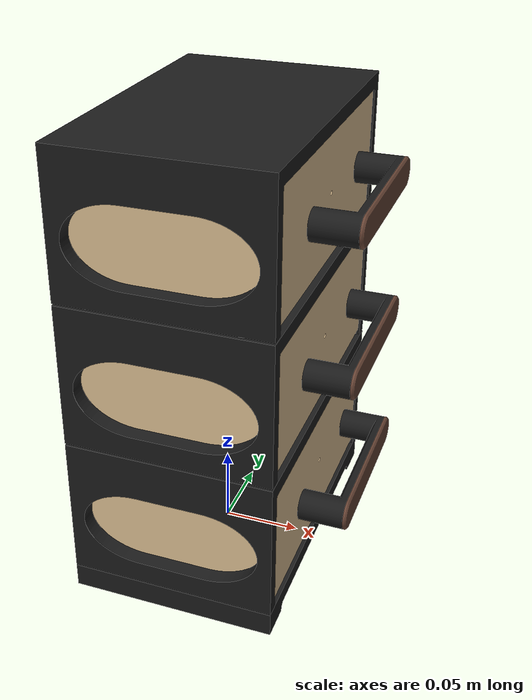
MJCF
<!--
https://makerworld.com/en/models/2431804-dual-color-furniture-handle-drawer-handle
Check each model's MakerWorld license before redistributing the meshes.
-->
<mujoco model="cabinet">
  <compiler meshdir="." angle="radian" autolimits="true"/>
  <default>
    <!-- Mesh visuals are non-colliding: MuJoCo treats mesh collisions as convex
         hulls, so explicit box geoms below provide the drawer support/contact. -->
    <geom density="600" friction="0.5 0.02 0.001" solref="0.005 1" contype="0" conaffinity="0"/>
  </default>

  <asset>
    <mesh name="frame_top"    file="cabinet_frame_top.stl"    scale="0.001 0.001 0.001"/>
    <mesh name="frame_mid"    file="cabinet_frame_mid.stl"    scale="0.001 0.001 0.001"/>
    <mesh name="frame_bottom" file="cabinet_frame_bottom.stl" scale="0.001 0.001 0.001"/>
    <mesh name="drawer_mesh"  file="cabinet_drawer.stl"       scale="0.001 0.001 0.001"/>
    <mesh name="handle_body"  file="handle_body_96mm.stl"     scale="0.001 0.001 0.001"/>
    <mesh name="handle_cover" file="handle_cover_96mm.stl"    scale="0.001 0.001 0.001"/>
    <material name="frame" rgba="0.11 0.11 0.11 1"/>
    <material name="drawer" rgba="0.90 0.78 0.60 1"/>
    <material name="handle_body" rgba="0.10 0.10 0.10 1"/>
    <material name="handle_cover" rgba="0.40 0.26 0.20 1"/>
  </asset>

  <worldbody>
    <!-- Root origin = cabinet base center on the floor. Place this asset at z=0. -->
    <body name="root">
      <!-- static frame: base + 3 stacked modules -->
      <body name="base" pos="-0.065 -0.1792 -0.1205" quat="0 0.707107 0 0.707107"><geom type="mesh" mesh="frame_bottom" material="frame"/></body>
      <body name="mod_bottom" pos="-0.065 0.128 -0.6809" quat="0 0.707107 0 0.707107"><geom type="mesh" mesh="frame_mid" material="frame"/></body>
      <body name="mod_middle" pos="-0.065 0.128 -0.5879" quat="0 0.707107 0 0.707107"><geom type="mesh" mesh="frame_mid" material="frame"/></body>
      <body name="mod_top" pos="-0.065 0.128 0.1195" quat="0 0.707107 0 0.707107"><geom type="mesh" mesh="frame_top" material="frame"/></body>
      <!-- Wide enough that a free-standing cabinet slides rather than tips. -->
      <geom name="base_pad" type="box" pos="0 0 0.004" size="0.120 0.115 0.004" rgba="0.12 0.12 0.12 1" group="3" contype="1" conaffinity="1" friction="0.23 0.02 0.001"/>
      <geom name="bay1_shelf" type="box" pos="0 0 0.012" size="0.065 0.090 0.006" rgba="0 1 0.25 0.55" group="3" contype="1" conaffinity="1" friction="0.23 0.02 0.001"/>
      <geom name="bay1_wall_l" type="box" pos="0 0.096 0.062" size="0.065 0.006 0.046" rgba="0 1 0.25 0.55" group="3" contype="1" conaffinity="1"/>
      <geom name="bay1_wall_r" type="box" pos="0 -0.096 0.062" size="0.065 0.006 0.046" rgba="0 1 0.25 0.55" group="3" contype="1" conaffinity="1"/>
      <geom name="bay1_back" type="box" pos="-0.071 0 0.062" size="0.006 0.090 0.046" rgba="0 1 0.25 0.55" group="3" contype="1" conaffinity="1"/>
      <geom name="bay2_shelf" type="box" pos="0 0 0.105" size="0.065 0.090 0.006" rgba="0 1 0.25 0.55" group="3" contype="1" conaffinity="1"/>
      <geom name="bay2_wall_l" type="box" pos="0 0.096 0.155" size="0.065 0.006 0.046" rgba="0 1 0.25 0.55" group="3" contype="1" conaffinity="1"/>
      <geom name="bay2_wall_r" type="box" pos="0 -0.096 0.155" size="0.065 0.006 0.046" rgba="0 1 0.25 0.55" group="3" contype="1" conaffinity="1"/>
      <geom name="bay2_back" type="box" pos="-0.071 0 0.155" size="0.006 0.090 0.046" rgba="0 1 0.25 0.55" group="3" contype="1" conaffinity="1"/>
      <geom name="bay3_shelf" type="box" pos="0 0 0.198" size="0.065 0.090 0.006" rgba="0 1 0.25 0.55" group="3" contype="1" conaffinity="1"/>
      <geom name="bay3_wall_l" type="box" pos="0 0.096 0.248" size="0.065 0.006 0.046" rgba="0 1 0.25 0.55" group="3" contype="1" conaffinity="1"/>
      <geom name="bay3_wall_r" type="box" pos="0 -0.096 0.248" size="0.065 0.006 0.046" rgba="0 1 0.25 0.55" group="3" contype="1" conaffinity="1"/>
      <geom name="bay3_back" type="box" pos="-0.071 0 0.248" size="0.006 0.090 0.046" rgba="0 1 0.25 0.55" group="3" contype="1" conaffinity="1"/>
      <geom name="top_shelf" type="box" pos="0 0 0.291" size="0.065 0.090 0.006" rgba="0 1 0.25 0.55" group="3" contype="1" conaffinity="1"/>

      <!-- Drawers are free bodies on simple support shelves: pull out +X and they can fall. -->
      <body name="drawer1" pos="-0.4352 0.1792 0.020663">
        <joint name="drawer1_x" type="slide" axis="1 0 0" damping="1"/>
        <joint name="drawer1_y" type="slide" axis="0 1 0" damping="1"/>
        <joint name="drawer1_z" type="slide" axis="0 0 1" damping="1"/>
        <joint name="drawer1_ball" type="ball" damping="0.05"/>
        <geom name="drawer1_contact" type="box" pos="0.4352 -0.1792 0.04084" size="0.062 0.088 0.038" rgba="0 1 1 0.50" group="3" contype="1" conaffinity="1" friction="0.6 0.02 0.001"/>
        <geom name="drawer1_handle_bar" type="capsule" fromto="0.52449 -0.2272 0.04084 0.52449 -0.1312 0.04084" size="0.009" rgba="1 0.45 0 0.80" group="3" contype="1" conaffinity="1" friction="1.2 0.05 0.005"/>
        <geom name="drawer1_handle_post_l" type="capsule" fromto="0.51049 -0.2192 0.04084 0.52449 -0.2192 0.04084" size="0.006" rgba="1 0.45 0 0.80" group="3" contype="1" conaffinity="1" friction="1.2 0.05 0.005"/>
        <geom name="drawer1_handle_post_r" type="capsule" fromto="0.51049 -0.1392 0.04084 0.52449 -0.1392 0.04084" size="0.006" rgba="1 0.45 0 0.80" group="3" contype="1" conaffinity="1" friction="1.2 0.05 0.005"/>
        <geom type="mesh" mesh="drawer_mesh" material="drawer"/>
        <geom type="mesh" mesh="handle_cover" material="handle_cover" pos="0.52986 -0.1792 0.04084" quat="-0.5 0.5 0.5 -0.5"/>
        <geom type="mesh" mesh="handle_body"  material="handle_body"  pos="0.53049 -0.1792 0.04084" quat="-0.5 0.5 0.5 -0.5"/>
        <site name="grasp1" pos="0.51649 -0.1792 0.04084" size="0.008" rgba="1 0.2 0.2 0" group="3"/>
      </body>
      <body name="drawer2" pos="-0.4352 0.1792 0.113663">
        <!-- A tight drawer: dry friction independent of its weight, above what the cabinet's sole holds. -->
        <joint name="drawer2_x" type="slide" axis="1 0 0" damping="1" frictionloss="20"/>
        <joint name="drawer2_y" type="slide" axis="0 1 0" damping="1"/>
        <joint name="drawer2_z" type="slide" axis="0 0 1" damping="1"/>
        <joint name="drawer2_ball" type="ball" damping="0.05"/>
        <geom name="drawer2_contact" type="box" pos="0.4352 -0.1792 0.04084" size="0.062 0.088 0.038" rgba="0 1 1 0.50" group="3" contype="1" conaffinity="1" friction="0.6 0.02 0.001"/>
        <geom name="drawer2_handle_bar" type="capsule" fromto="0.52449 -0.2272 0.04084 0.52449 -0.1312 0.04084" size="0.009" rgba="1 0.45 0 0.80" group="3" contype="1" conaffinity="1" friction="1.2 0.05 0.005"/>
        <geom name="drawer2_handle_post_l" type="capsule" fromto="0.51049 -0.2192 0.04084 0.52449 -0.2192 0.04084" size="0.006" rgba="1 0.45 0 0.80" group="3" contype="1" conaffinity="1" friction="1.2 0.05 0.005"/>
        <geom name="drawer2_handle_post_r" type="capsule" fromto="0.51049 -0.1392 0.04084 0.52449 -0.1392 0.04084" size="0.006" rgba="1 0.45 0 0.80" group="3" contype="1" conaffinity="1" friction="1.2 0.05 0.005"/>
        <geom type="mesh" mesh="drawer_mesh" material="drawer"/>
        <geom type="mesh" mesh="handle_cover" material="handle_cover" pos="0.52986 -0.1792 0.04084" quat="-0.5 0.5 0.5 -0.5"/>
        <geom type="mesh" mesh="handle_body"  material="handle_body"  pos="0.53049 -0.1792 0.04084" quat="-0.5 0.5 0.5 -0.5"/>
        <site name="grasp2" pos="0.51649 -0.1792 0.04084" size="0.008" rgba="1 0.2 0.2 0" group="3"/>
      </body>
      <body name="drawer3" pos="-0.4352 0.1792 0.206663">
        <joint name="drawer3_x" type="slide" axis="1 0 0" damping="1"/>
        <joint name="drawer3_y" type="slide" axis="0 1 0" damping="1"/>
        <joint name="drawer3_z" type="slide" axis="0 0 1" damping="1"/>
        <joint name="drawer3_ball" type="ball" damping="0.05"/>
        <geom name="drawer3_contact" type="box" pos="0.4352 -0.1792 0.04084" size="0.062 0.088 0.038" rgba="0 1 1 0.50" group="3" contype="1" conaffinity="1" friction="0.6 0.02 0.001"/>
        <geom name="drawer3_handle_bar" type="capsule" fromto="0.52449 -0.2272 0.04084 0.52449 -0.1312 0.04084" size="0.009" rgba="1 0.45 0 0.80" group="3" contype="1" conaffinity="1" friction="1.2 0.05 0.005"/>
        <geom name="drawer3_handle_post_l" type="capsule" fromto="0.51049 -0.2192 0.04084 0.52449 -0.2192 0.04084" size="0.006" rgba="1 0.45 0 0.80" group="3" contype="1" conaffinity="1" friction="1.2 0.05 0.005"/>
        <geom name="drawer3_handle_post_r" type="capsule" fromto="0.51049 -0.1392 0.04084 0.52449 -0.1392 0.04084" size="0.006" rgba="1 0.45 0 0.80" group="3" contype="1" conaffinity="1" friction="1.2 0.05 0.005"/>
        <geom type="mesh" mesh="drawer_mesh" material="drawer"/>
        <geom type="mesh" mesh="handle_cover" material="handle_cover" pos="0.52986 -0.1792 0.04084" quat="-0.5 0.5 0.5 -0.5"/>
        <geom type="mesh" mesh="handle_body"  material="handle_body"  pos="0.53049 -0.1792 0.04084" quat="-0.5 0.5 0.5 -0.5"/>
        <site name="grasp3" pos="0.51649 -0.1792 0.04084" size="0.008" rgba="1 0.2 0.2 0" group="3"/>
      </body>
    </body>
  </worldbody>

  <contact>
    <pair geom1="drawer1_contact" geom2="bay1_shelf" friction="0.6 0.6 0.02 0.001 0.001" solref="0.005 1"/>
    <pair geom1="drawer1_contact" geom2="bay1_wall_l" friction="0.6 0.6 0.02 0.001 0.001" solref="0.005 1"/>
    <pair geom1="drawer1_contact" geom2="bay1_wall_r" friction="0.6 0.6 0.02 0.001 0.001" solref="0.005 1"/>
    <pair geom1="drawer1_contact" geom2="bay1_back" friction="0.6 0.6 0.02 0.001 0.001" solref="0.005 1"/>
    <pair geom1="drawer1_contact" geom2="bay2_shelf" friction="0.6 0.6 0.02 0.001 0.001" solref="0.005 1"/>
    <pair geom1="drawer2_contact" geom2="bay2_shelf" friction="1.0 1.0 0.02 0.001 0.001" solref="0.005 1"/>
    <pair geom1="drawer2_contact" geom2="bay2_wall_l" friction="1.0 1.0 0.02 0.001 0.001" solref="0.005 1"/>
    <pair geom1="drawer2_contact" geom2="bay2_wall_r" friction="1.0 1.0 0.02 0.001 0.001" solref="0.005 1"/>
    <pair geom1="drawer2_contact" geom2="bay2_back" friction="1.0 1.0 0.02 0.001 0.001" solref="0.005 1"/>
    <pair geom1="drawer2_contact" geom2="bay3_shelf" friction="1.0 1.0 0.02 0.001 0.001" solref="0.005 1"/>
    <pair geom1="drawer3_contact" geom2="bay3_shelf" friction="0.6 0.6 0.02 0.001 0.001" solref="0.005 1"/>
    <pair geom1="drawer3_contact" geom2="bay3_wall_l" friction="0.6 0.6 0.02 0.001 0.001" solref="0.005 1"/>
    <pair geom1="drawer3_contact" geom2="bay3_wall_r" friction="0.6 0.6 0.02 0.001 0.001" solref="0.005 1"/>
    <pair geom1="drawer3_contact" geom2="bay3_back" friction="0.6 0.6 0.02 0.001 0.001" solref="0.005 1"/>
    <pair geom1="drawer3_contact" geom2="top_shelf" friction="0.6 0.6 0.02 0.001 0.001" solref="0.005 1"/>
  </contact>
</mujoco>
